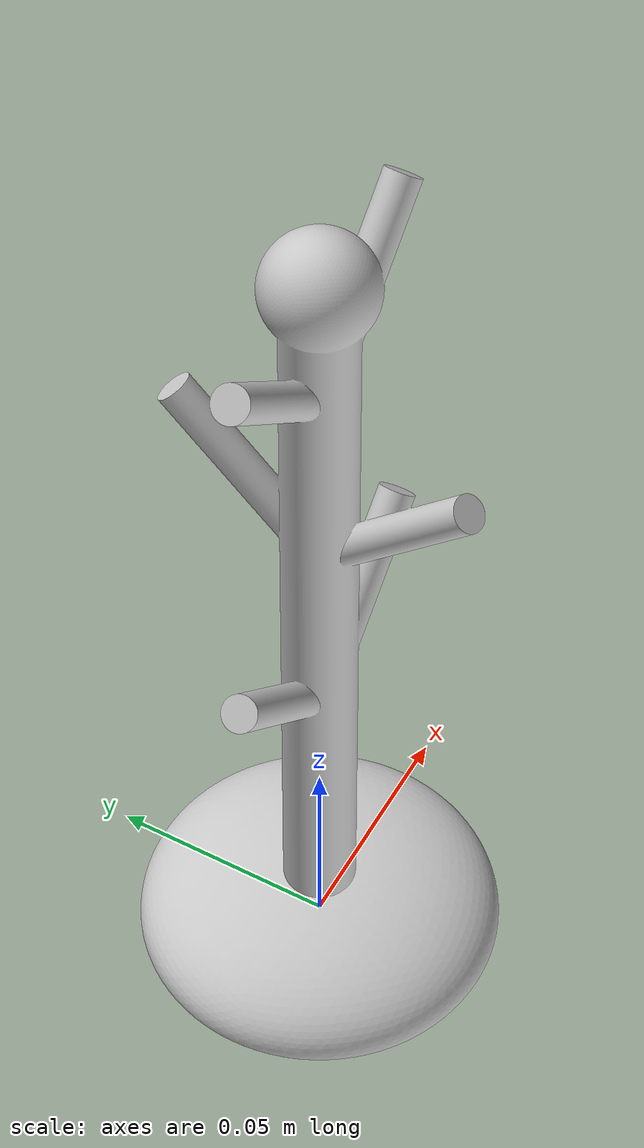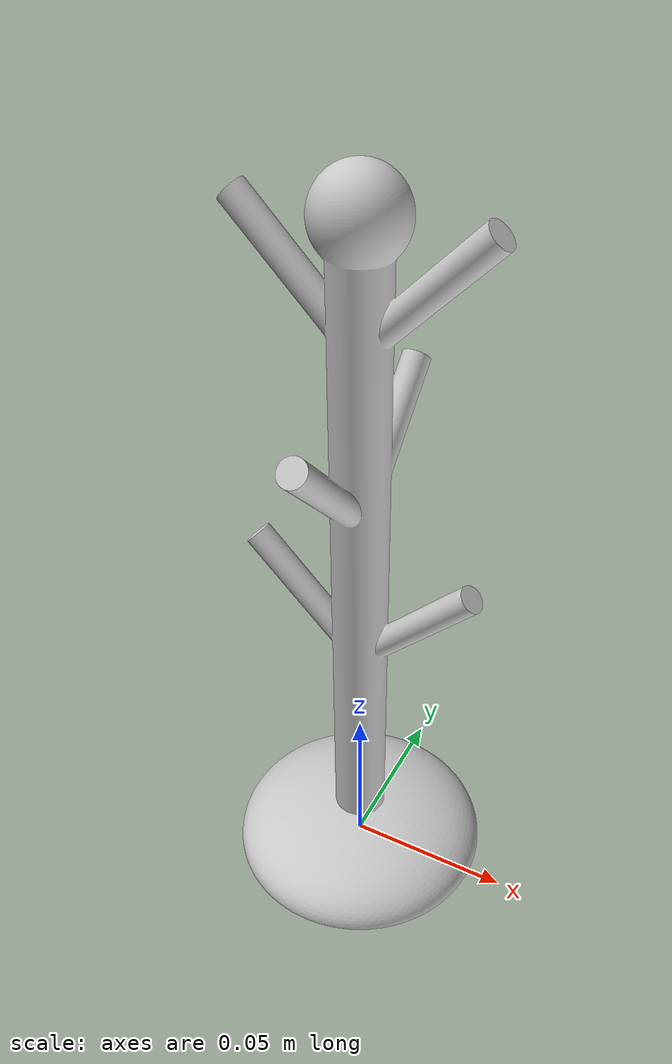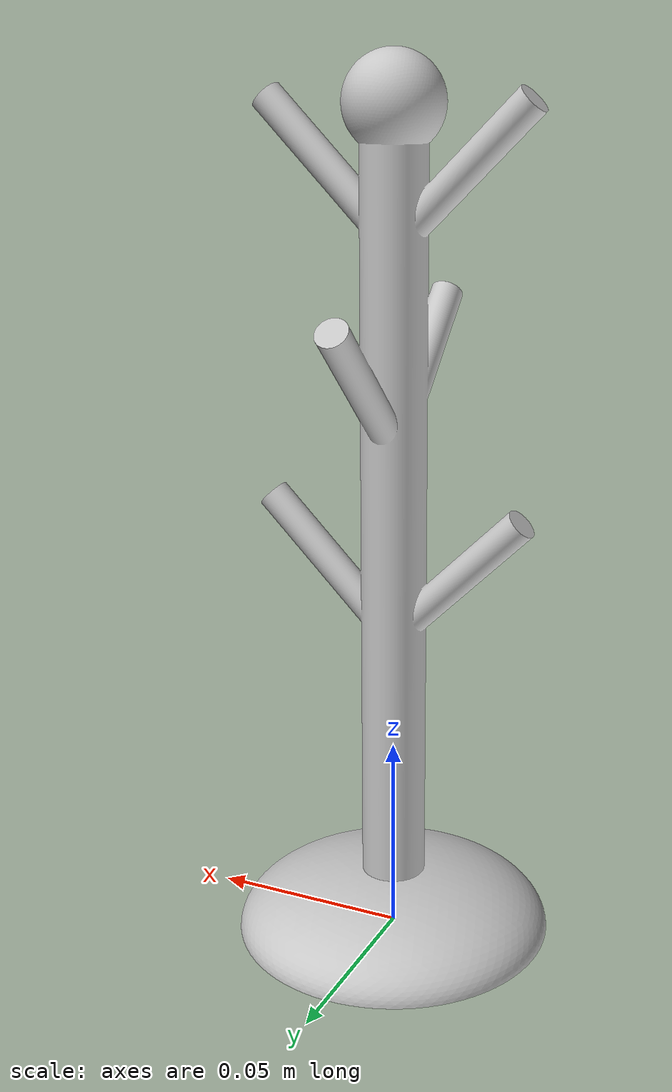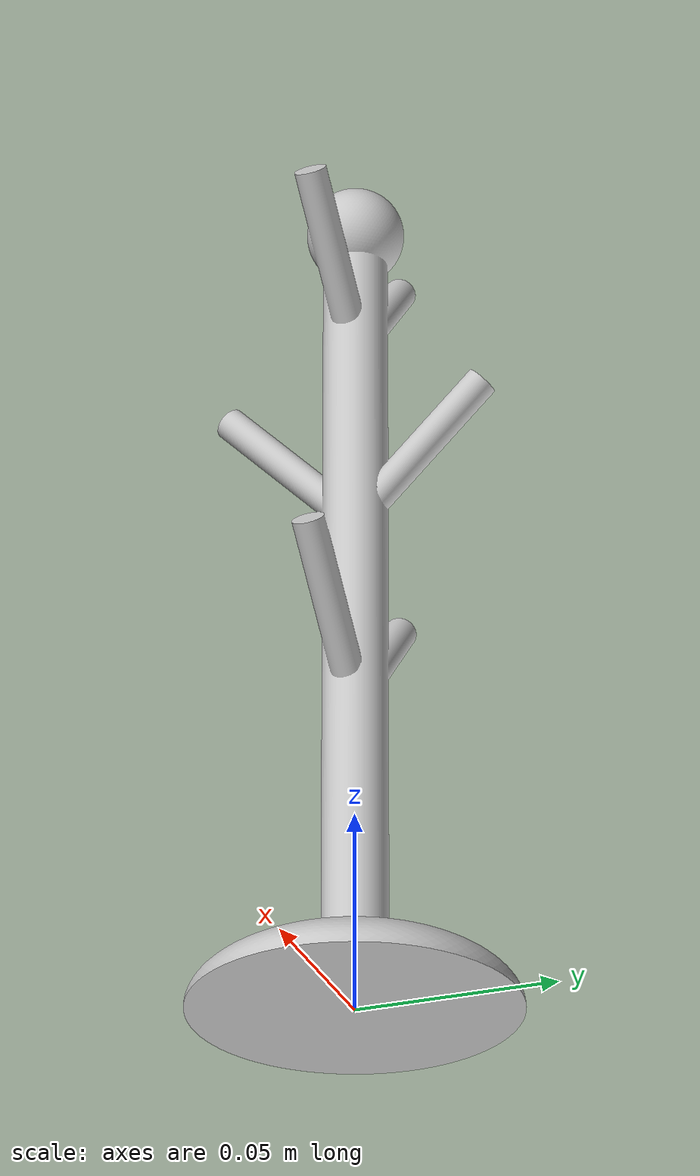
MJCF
<?xml version="1.0" ?>
<mujoco model="mugtree">
  <asset>
    <mesh name="visual_mesh" file="../meshes/mugtree_visual.stl"/>
    <mesh name="hull_0" file="../meshes/mugtree_hull_0.stl"/>
    <mesh name="hull_1" file="../meshes/mugtree_hull_1.stl"/>
    <mesh name="hull_2" file="../meshes/mugtree_hull_2.stl"/>
    <mesh name="hull_3" file="../meshes/mugtree_hull_3.stl"/>
    <mesh name="hull_4" file="../meshes/mugtree_hull_4.stl"/>
    <mesh name="hull_5" file="../meshes/mugtree_hull_5.stl"/>
    <mesh name="hull_6" file="../meshes/mugtree_hull_6.stl"/>
    <mesh name="hull_7" file="../meshes/mugtree_hull_7.stl"/>
    <mesh name="hull_8" file="../meshes/mugtree_hull_8.stl"/>
    <mesh name="hull_9" file="../meshes/mugtree_hull_9.stl"/>
    <mesh name="hull_10" file="../meshes/mugtree_hull_10.stl"/>
  </asset>
  <worldbody>
    <body>
      <body name="object">
        <geom name="visual" type="mesh" mesh="visual_mesh" rgba="0.8 0.8 0.8 1.0" contype="0" conaffinity="0" group="1" density="1" pos="0 0 0.0001"/>
        <geom name="collision_0" type="mesh" mesh="hull_0" rgba="0.5 0.5 0.5 0.01" density="45.45454545454545" friction="0.95 0.3 0.1" condim="4" solref="0.001 1" solimp="0.998 0.998 0.001" group="0"/>
        <geom name="collision_1" type="mesh" mesh="hull_1" rgba="0.5 0.5 0.5 0.01" density="45.45454545454545" friction="0.95 0.3 0.1" condim="4" solref="0.001 1" solimp="0.998 0.998 0.001" group="0"/>
        <geom name="collision_2" type="mesh" mesh="hull_2" rgba="0.5 0.5 0.5 0.01" density="45.45454545454545" friction="0.95 0.3 0.1" condim="4" solref="0.001 1" solimp="0.998 0.998 0.001" group="0"/>
        <geom name="collision_3" type="mesh" mesh="hull_3" rgba="0.5 0.5 0.5 0.01" density="45.45454545454545" friction="0.95 0.3 0.1" condim="4" solref="0.001 1" solimp="0.998 0.998 0.001" group="0"/>
        <geom name="collision_4" type="mesh" mesh="hull_4" rgba="0.5 0.5 0.5 0.01" density="45.45454545454545" friction="0.95 0.3 0.1" condim="4" solref="0.001 1" solimp="0.998 0.998 0.001" group="0"/>
        <geom name="collision_5" type="mesh" mesh="hull_5" rgba="0.5 0.5 0.5 0.01" density="45.45454545454545" friction="0.95 0.3 0.1" condim="4" solref="0.001 1" solimp="0.998 0.998 0.001" group="0"/>
        <geom name="collision_6" type="mesh" mesh="hull_6" rgba="0.5 0.5 0.5 0.01" density="45.45454545454545" friction="0.95 0.3 0.1" condim="4" solref="0.001 1" solimp="0.998 0.998 0.001" group="0"/>
        <geom name="collision_7" type="mesh" mesh="hull_7" rgba="0.5 0.5 0.5 0.01" density="45.45454545454545" friction="0.95 0.3 0.1" condim="4" solref="0.001 1" solimp="0.998 0.998 0.001" group="0"/>
        <geom name="collision_8" type="mesh" mesh="hull_8" rgba="0.5 0.5 0.5 0.01" density="45.45454545454545" friction="0.95 0.3 0.1" condim="4" solref="0.001 1" solimp="0.998 0.998 0.001" group="0"/>
        <geom name="collision_9" type="mesh" mesh="hull_9" rgba="0.5 0.5 0.5 0.01" density="45.45454545454545" friction="0.95 0.3 0.1" condim="4" solref="0.001 1" solimp="0.998 0.998 0.001" group="0"/>
        <geom name="collision_10" type="mesh" mesh="hull_10" rgba="0.5 0.5 0.5 0.01" density="45.45454545454545" friction="0.95 0.3 0.1" condim="4" solref="0.001 1" solimp="0.998 0.998 0.001" group="0"/>
      </body>
      <site rgba="0 0 0 0" size="0.005" pos="0 0 0" name="bottom_site"/>
      <site rgba="0 0 0 0" size="0.005" pos="0 0 0.1" name="top_site"/>
      <site rgba="0 0 0 0" size="0.005" pos="0.05 0 0.05" name="horizontal_radius_site"/>
    </body>
  </worldbody>
</mujoco>
